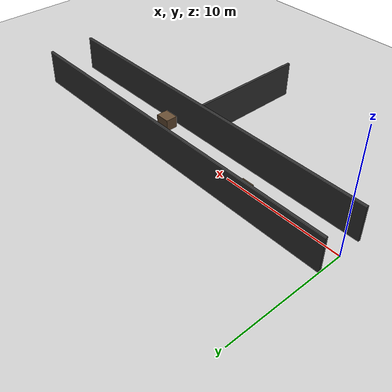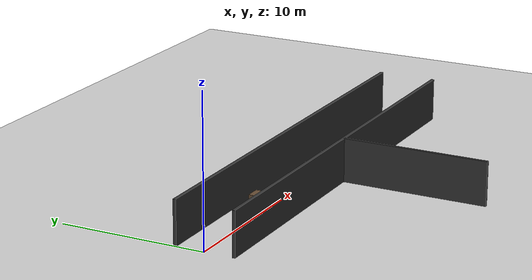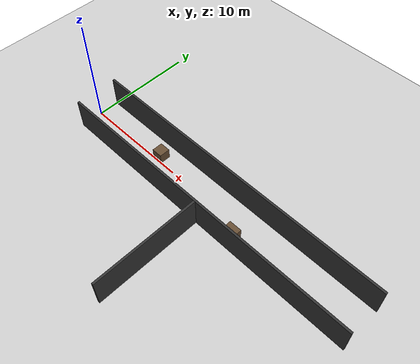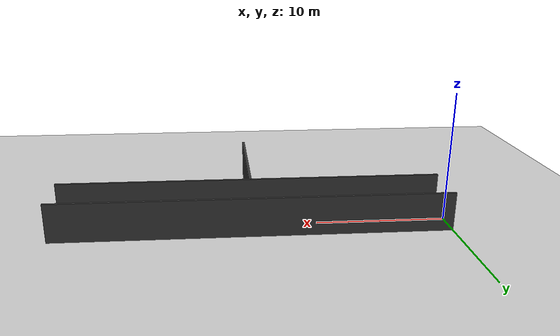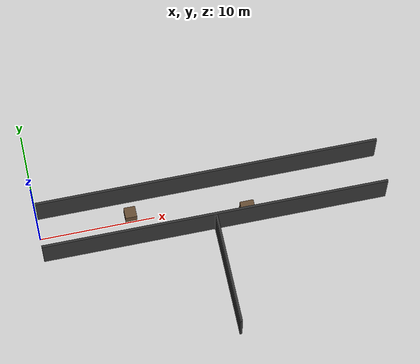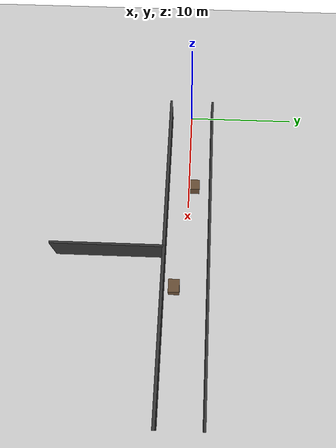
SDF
<?xml version="1.0" ?>
<!--
  DeepMine AI - Gazebo Yer Altı Maden Gelerisi Dünyası
  TEKNOFEST 2026 Maden Teknolojileri Yarışması
-->
<sdf version="1.6">
  <world name="mine_world">
    <!-- Fizik Motoru -->
    <include>
      <uri>model://sun</uri>
    </include>
    <include>
      <uri>model://ground_plane</uri>
    </include>

    <physics name="default_physics" default="true" type="ode">
      <max_step_size>0.001</max_step_size>
      <real_time_factor>1.0</real_time_factor>
      <real_time_update_rate>1000</real_time_update_rate>
    </physics>

    <!-- Ortam Işığı (Yer altı - karanlık) -->
    <light name="ambient_mine" type="ambient">
      <cast_shadows>false</cast_shadows>
      <diffuse>0.1 0.1 0.1 1.0</diffuse>
      <specular>0.01 0.01 0.01 1.0</specular>
    </light>

    <!-- Galeri Duvarları (Basitleştirilmiş) -->
    <model name="mine_walls">
      <static>true</static>
      <link name="link">
        <collision name="wall_1">
          <pose>15 2 1.5 0 0 0</pose>
          <geometry><box><size>30 0.2 3</size></box></geometry>
        </collision>
        <visual name="wall_1_vis">
          <pose>15 2 1.5 0 0 0</pose>
          <geometry><box><size>30 0.2 3</size></box></geometry>
          <material><ambient>0.2 0.2 0.2 1</ambient></material>
        </visual>

        <collision name="wall_2">
          <pose>15 -2 1.5 0 0 0</pose>
          <geometry><box><size>30 0.2 3</size></box></geometry>
        </collision>
        <visual name="wall_2_vis">
          <pose>15 -2 1.5 0 0 0</pose>
          <geometry><box><size>30 0.2 3</size></box></geometry>
          <material><ambient>0.2 0.2 0.2 1</ambient></material>
        </visual>

        <!-- T kavşak -->
        <collision name="wall_3">
          <pose>15 -7 1.5 0 0 1.57</pose>
          <geometry><box><size>10 0.2 3</size></box></geometry>
        </collision>
        <visual name="wall_3_vis">
          <pose>15 -7 1.5 0 0 1.57</pose>
          <geometry><box><size>10 0.2 3</size></box></geometry>
          <material><ambient>0.2 0.2 0.2 1</ambient></material>
        </visual>
      </link>
    </model>

    <!-- Engeller -->
    <model name="rock_1">
      <static>true</static>
      <pose>8 0.5 0.5 0 0 0</pose>
      <link name="link">
        <collision name="col"><geometry><box><size>1 1 1</size></box></geometry></collision>
        <visual name="vis"><geometry><box><size>1 1 1</size></box></geometry><material><ambient>0.4 0.3 0.2 1</ambient></material></visual>
      </link>
    </model>

    <model name="rock_2">
      <static>true</static>
      <pose>18 -1.0 0.5 0 0 0</pose>
      <link name="link">
        <collision name="col"><geometry><box><size>1.2 1 1</size></box></geometry></collision>
        <visual name="vis"><geometry><box><size>1.2 1 1</size></box></geometry><material><ambient>0.4 0.3 0.2 1</ambient></material></visual>
      </link>
    </model>

  </world>
</sdf>
